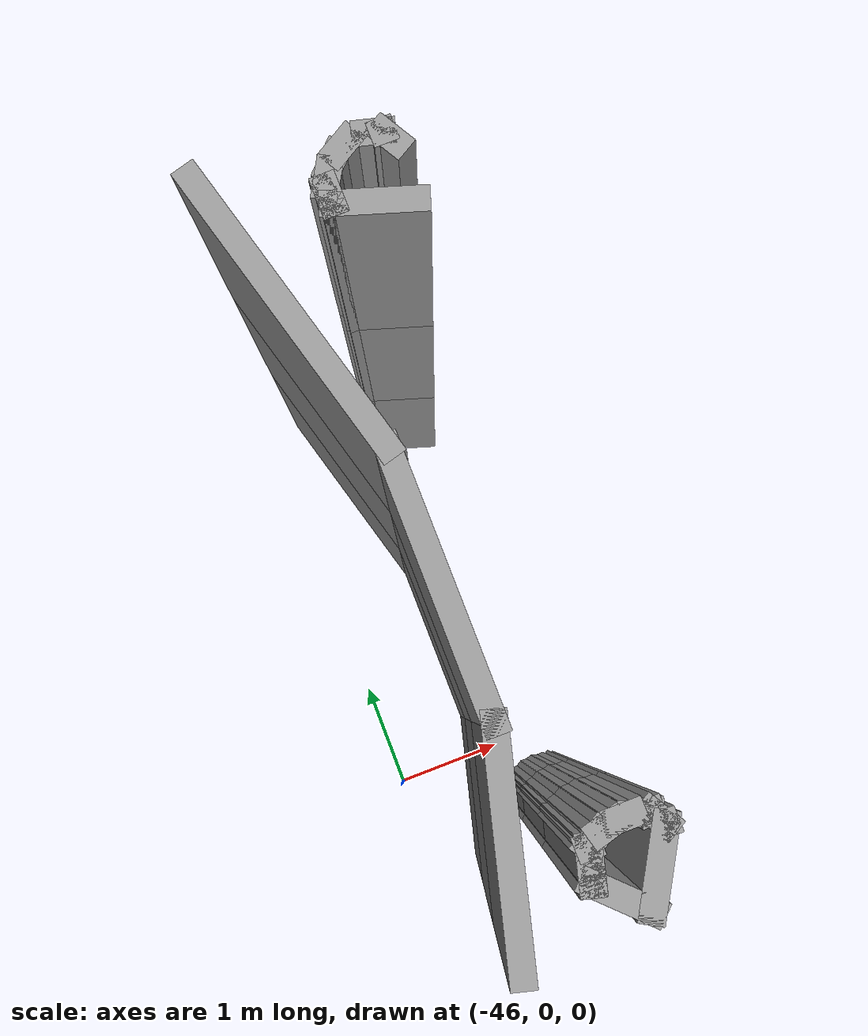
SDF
<sdf version="1.7">
 <model name="mapagazebo">
  <pose>-4.67869 9.01252 0 0 -0 0</pose>
  <link name="Wall_1000">
   <collision name="Wall_1000_Collision">
    <geometry><box><size>0.25 0.15 2.5</size></box></geometry>
    <pose>0 0 1.25 0 -0 0</pose>
   </collision>
   <visual name="Wall_1000_Visual">
    <pose>0 0 1.25 0 -0 0</pose>
    <geometry><box><size>0.25 0.15 2.5</size></box></geometry>
    <material>
     <script><uri>file://media/materials/scripts/gazebo.material</uri><name>Gazebo/Grey</name></script>
     <ambient>1 1 1 1</ambient>
    </material>
    <meta><layer>1</layer></meta>
   </visual>
   <pose>-40.177 -5.42763 2.5 0 -0 0.785398</pose>
  </link>
  <link name="Wall_1001">
   <collision name="Wall_1001_Collision">
    <geometry><box><size>0.25 0.15 2.5</size></box></geometry>
    <pose>0 0 1.25 0 -0 0</pose>
   </collision>
   <visual name="Wall_1001_Visual">
    <pose>0 0 1.25 0 -0 0</pose>
    <geometry><box><size>0.25 0.15 2.5</size></box></geometry>
    <material>
     <script><uri>file://media/materials/scripts/gazebo.material</uri><name>Gazebo/Grey</name></script>
     <ambient>1 1 1 1</ambient>
    </material>
    <meta><layer>1</layer></meta>
   </visual>
   <pose>-40.0984 -5.36727 2.5 0 -0 0.523599</pose>
  </link>
  <link name="Wall_1003">
   <collision name="Wall_1003_Collision">
    <geometry><box><size>0.25 0.15 2.5</size></box></geometry>
    <pose>0 0 1.25 0 -0 0</pose>
   </collision>
   <visual name="Wall_1003_Visual">
    <pose>0 0 1.25 0 -0 0</pose>
    <geometry><box><size>0.25 0.15 2.5</size></box></geometry>
    <material>
     <script><uri>file://media/materials/scripts/gazebo.material</uri><name>Gazebo/Grey</name></script>
     <ambient>1 1 1 1</ambient>
    </material>
    <meta><layer>1</layer></meta>
   </visual>
   <pose>-39.9068 -5.35521 2.5 0 -0 -0.261799</pose>
  </link>
  <link name="Wall_1004">
   <collision name="Wall_1004_Collision">
    <geometry><box><size>0.15 0.15 2.5</size></box></geometry>
    <pose>0 0 1.25 0 -0 0</pose>
   </collision>
   <visual name="Wall_1004_Visual">
    <pose>0 0 1.25 0 -0 0</pose>
    <geometry><box><size>0.15 0.15 2.5</size></box></geometry>
    <material>
     <script><uri>file://media/materials/scripts/gazebo.material</uri><name>Gazebo/Grey</name></script>
     <ambient>1 1 1 1</ambient>
    </material>
    <meta><layer>1</layer></meta>
   </visual>
   <pose>-39.8585 -5.36815 2.5 0 -0 0</pose>
  </link>
  <link name="Wall_1005">
   <collision name="Wall_1005_Collision">
    <geometry><box><size>0.25 0.15 2.5</size></box></geometry>
    <pose>0 0 1.25 0 -0 0</pose>
   </collision>
   <visual name="Wall_1005_Visual">
    <pose>0 0 1.25 0 -0 0</pose>
    <geometry><box><size>0.25 0.15 2.5</size></box></geometry>
    <material>
     <script><uri>file://media/materials/scripts/gazebo.material</uri><name>Gazebo/Grey</name></script>
     <ambient>1 1 1 1</ambient>
    </material>
    <meta><layer>1</layer></meta>
   </visual>
   <pose>-39.8335 -5.41146 2.5 0 -0 -1.0472</pose>
  </link>
  <link name="Wall_1009">
   <collision name="Wall_1009_Collision">
    <geometry><box><size>0.617004 0.15 2.5</size></box></geometry>
    <pose>0 0 1.25 0 -0 0</pose>
   </collision>
   <visual name="Wall_1009_Visual">
    <pose>0 0 1.25 0 -0 0</pose>
    <geometry><box><size>0.617004 0.15 2.5</size></box></geometry>
    <material>
     <script><uri>file://media/materials/scripts/gazebo.material</uri><name>Gazebo/Grey</name></script>
     <ambient>1 1 1 1</ambient>
    </material>
    <meta><layer>1</layer></meta>
   </visual>
   <pose>-40.0401 -5.72121 2.5 0 -0 2.82984</pose>
  </link>
  <link name="Wall_1010">
   <collision name="Wall_1010_Collision">
    <geometry><box><size>0.15 0.15 2.5</size></box></geometry>
    <pose>0 0 1.25 0 -0 0</pose>
   </collision>
   <visual name="Wall_1010_Visual">
    <pose>0 0 1.25 0 -0 0</pose>
    <geometry><box><size>0.15 0.15 2.5</size></box></geometry>
    <material>
     <script><uri>file://media/materials/scripts/gazebo.material</uri><name>Gazebo/Grey</name></script>
     <ambient>1 1 1 1</ambient>
    </material>
    <meta><layer>1</layer></meta>
   </visual>
   <pose>-40.2624 -5.64959 2.5 0 -0 0</pose>
  </link>
  <link name="Wall_1552">
   <collision name="Wall_1552_Collision">
    <geometry><box><size>2 0.15 2.5</size></box></geometry>
    <pose>0 0 1.25 0 -0 0</pose>
   </collision>
   <visual name="Wall_1552_Visual">
    <pose>0 0 1.25 0 -0 0</pose>
    <geometry><box><size>2 0.15 2.5</size></box></geometry>
    <material>
     <script><uri>file://media/materials/scripts/gazebo.material</uri><name>Gazebo/Grey</name></script>
     <ambient>1 1 1 1</ambient>
    </material>
    <meta><layer>2</layer></meta>
   </visual>
   <pose>-40.7035 -6.12483 5 0 -0 -1.309</pose>
  </link>
  <link name="Wall_1553">
   <collision name="Wall_1553_Collision">
    <geometry><box><size>1.75 0.15 2.5</size></box></geometry>
    <pose>0 0 1.25 0 -0 0</pose>
   </collision>
   <visual name="Wall_1553_Visual">
    <pose>0 0 1.25 0 -0 0</pose>
    <geometry><box><size>1.75 0.15 2.5</size></box></geometry>
    <material>
     <script><uri>file://media/materials/scripts/gazebo.material</uri><name>Gazebo/Grey</name></script>
     <ambient>1 1 1 1</ambient>
    </material>
    <meta><layer>2</layer></meta>
   </visual>
   <pose>-40.4641 -7.81831 5 0 -0 -1.5708</pose>
  </link>
  <link name="Wall_1554">
   <collision name="Wall_1554_Collision">
    <geometry><box><size>1.5 0.15 2.5</size></box></geometry>
    <pose>0 0 1.25 0 -0 0</pose>
   </collision>
   <visual name="Wall_1554_Visual">
    <pose>0 0 1.25 0 -0 0</pose>
    <geometry><box><size>1.5 0.15 2.5</size></box></geometry>
    <material>
     <script><uri>file://media/materials/scripts/gazebo.material</uri><name>Gazebo/Grey</name></script>
     <ambient>1 1 1 1</ambient>
    </material>
    <meta><layer>2</layer></meta>
   </visual>
   <pose>-40.6388 -9.27031 5 0 -0 -1.8326</pose>
  </link>
  <link name="Wall_1606">
   <collision name="Wall_1606_Collision">
    <geometry><box><size>0.25 0.15 2.5</size></box></geometry>
    <pose>0 0 1.25 0 -0 0</pose>
   </collision>
   <visual name="Wall_1606_Visual">
    <pose>0 0 1.25 0 -0 0</pose>
    <geometry><box><size>0.25 0.15 2.5</size></box></geometry>
    <material>
     <script><uri>file://media/materials/scripts/gazebo.material</uri><name>Gazebo/Grey</name></script>
     <ambient>1 1 1 1</ambient>
    </material>
    <meta><layer>2</layer></meta>
   </visual>
   <pose>-40.2766 -9.55558 5 0 -0 1.309</pose>
  </link>
  <link name="Wall_1607">
   <collision name="Wall_1607_Collision">
    <geometry><box><size>0.25 0.15 2.5</size></box></geometry>
    <pose>0 0 1.25 0 -0 0</pose>
   </collision>
   <visual name="Wall_1607_Visual">
    <pose>0 0 1.25 0 -0 0</pose>
    <geometry><box><size>0.25 0.15 2.5</size></box></geometry>
    <material>
     <script><uri>file://media/materials/scripts/gazebo.material</uri><name>Gazebo/Grey</name></script>
     <ambient>1 1 1 1</ambient>
    </material>
    <meta><layer>2</layer></meta>
   </visual>
   <pose>-40.2508 -9.45899 5 0 -0 1.309</pose>
  </link>
  <link name="Wall_1608">
   <collision name="Wall_1608_Collision">
    <geometry><box><size>0.15 0.15 2.5</size></box></geometry>
    <pose>0 0 1.25 0 -0 0</pose>
   </collision>
   <visual name="Wall_1608_Visual">
    <pose>0 0 1.25 0 -0 0</pose>
    <geometry><box><size>0.15 0.15 2.5</size></box></geometry>
    <material>
     <script><uri>file://media/materials/scripts/gazebo.material</uri><name>Gazebo/Grey</name></script>
     <ambient>1 1 1 1</ambient>
    </material>
    <meta><layer>2</layer></meta>
   </visual>
   <pose>-40.2378 -9.41069 5 0 -0 0</pose>
  </link>
  <link name="Wall_1609">
   <collision name="Wall_1609_Collision">
    <geometry><box><size>0.25 0.15 2.5</size></box></geometry>
    <pose>0 0 1.25 0 -0 0</pose>
   </collision>
   <visual name="Wall_1609_Visual">
    <pose>0 0 1.25 0 -0 0</pose>
    <geometry><box><size>0.25 0.15 2.5</size></box></geometry>
    <material>
     <script><uri>file://media/materials/scripts/gazebo.material</uri><name>Gazebo/Grey</name></script>
     <ambient>1 1 1 1</ambient>
    </material>
    <meta><layer>2</layer></meta>
   </visual>
   <pose>-40.1945 -9.38569 5 0 -0 0.523599</pose>
  </link>
  <link name="Wall_1610">
   <collision name="Wall_1610_Collision">
    <geometry><box><size>0.25 0.15 2.5</size></box></geometry>
    <pose>0 0 1.25 0 -0 0</pose>
   </collision>
   <visual name="Wall_1610_Visual">
    <pose>0 0 1.25 0 -0 0</pose>
    <geometry><box><size>0.25 0.15 2.5</size></box></geometry>
    <material>
     <script><uri>file://media/materials/scripts/gazebo.material</uri><name>Gazebo/Grey</name></script>
     <ambient>1 1 1 1</ambient>
    </material>
    <meta><layer>2</layer></meta>
   </visual>
   <pose>-40.1029 -9.34775 5 0 -0 0.261799</pose>
  </link>
  <link name="Wall_1611">
   <collision name="Wall_1611_Collision">
    <geometry><box><size>0.25 0.15 2.5</size></box></geometry>
    <pose>0 0 1.25 0 -0 0</pose>
   </collision>
   <visual name="Wall_1611_Visual">
    <pose>0 0 1.25 0 -0 0</pose>
    <geometry><box><size>0.25 0.15 2.5</size></box></geometry>
    <material>
     <script><uri>file://media/materials/scripts/gazebo.material</uri><name>Gazebo/Grey</name></script>
     <ambient>1 1 1 1</ambient>
    </material>
    <meta><layer>2</layer></meta>
   </visual>
   <pose>-40.0046 -9.33481 5 0 -0 0</pose>
  </link>
  <link name="Wall_1612">
   <collision name="Wall_1612_Collision">
    <geometry><box><size>0.25 0.15 2.5</size></box></geometry>
    <pose>0 0 1.25 0 -0 0</pose>
   </collision>
   <visual name="Wall_1612_Visual">
    <pose>0 0 1.25 0 -0 0</pose>
    <geometry><box><size>0.25 0.15 2.5</size></box></geometry>
    <material>
     <script><uri>file://media/materials/scripts/gazebo.material</uri><name>Gazebo/Grey</name></script>
     <ambient>1 1 1 1</ambient>
    </material>
    <meta><layer>2</layer></meta>
   </visual>
   <pose>-39.9063 -9.34775 5 0 -0 -0.261799</pose>
  </link>
  <link name="Wall_1613">
   <collision name="Wall_1613_Collision">
    <geometry><box><size>0.15 0.15 2.5</size></box></geometry>
    <pose>0 0 1.25 0 -0 0</pose>
   </collision>
   <visual name="Wall_1613_Visual">
    <pose>0 0 1.25 0 -0 0</pose>
    <geometry><box><size>0.15 0.15 2.5</size></box></geometry>
    <material>
     <script><uri>file://media/materials/scripts/gazebo.material</uri><name>Gazebo/Grey</name></script>
     <ambient>1 1 1 1</ambient>
    </material>
    <meta><layer>2</layer></meta>
   </visual>
   <pose>-39.858 -9.36069 5 0 -0 0</pose>
  </link>
  <link name="Wall_1614">
   <collision name="Wall_1614_Collision">
    <geometry><box><size>0.25 0.15 2.5</size></box></geometry>
    <pose>0 0 1.25 0 -0 0</pose>
   </collision>
   <visual name="Wall_1614_Visual">
    <pose>0 0 1.25 0 -0 0</pose>
    <geometry><box><size>0.25 0.15 2.5</size></box></geometry>
    <material>
     <script><uri>file://media/materials/scripts/gazebo.material</uri><name>Gazebo/Grey</name></script>
     <ambient>1 1 1 1</ambient>
    </material>
    <meta><layer>2</layer></meta>
   </visual>
   <pose>-39.833 -9.40399 5 0 -0 -1.0472</pose>
  </link>
  <link name="Wall_1615">
   <collision name="Wall_1615_Collision">
    <geometry><box><size>0.25 0.15 2.5</size></box></geometry>
    <pose>0 0 1.25 0 -0 0</pose>
   </collision>
   <visual name="Wall_1615_Visual">
    <pose>0 0 1.25 0 -0 0</pose>
    <geometry><box><size>0.25 0.15 2.5</size></box></geometry>
    <material>
     <script><uri>file://media/materials/scripts/gazebo.material</uri><name>Gazebo/Grey</name></script>
     <ambient>1 1 1 1</ambient>
    </material>
    <meta><layer>2</layer></meta>
   </visual>
   <pose>-40.2766 -9.55558 5 0 -0 -1.8326</pose>
  </link>
  <link name="Wall_1616">
   <collision name="Wall_1616_Collision">
    <geometry><box><size>0.5 0.15 2.5</size></box></geometry>
    <pose>0 0 1.25 0 -0 0</pose>
   </collision>
   <visual name="Wall_1616_Visual">
    <pose>0 0 1.25 0 -0 0</pose>
    <geometry><box><size>0.5 0.15 2.5</size></box></geometry>
    <material>
     <script><uri>file://media/materials/scripts/gazebo.material</uri><name>Gazebo/Grey</name></script>
     <ambient>1 1 1 1</ambient>
    </material>
    <meta><layer>2</layer></meta>
   </visual>
   <pose>-40.1658 -9.72762 5 0 -0 -0.785398</pose>
  </link>
  <link name="Wall_1618">
   <collision name="Wall_1618_Collision">
    <geometry><box><size>0.616967 0.15 2.5</size></box></geometry>
    <pose>0 0 1.25 0 -0 0</pose>
   </collision>
   <visual name="Wall_1618_Visual">
    <pose>0 0 1.25 0 -0 0</pose>
    <geometry><box><size>0.616967 0.15 2.5</size></box></geometry>
    <material>
     <script><uri>file://media/materials/scripts/gazebo.material</uri><name>Gazebo/Grey</name></script>
     <ambient>1 1 1 1</ambient>
    </material>
    <meta><layer>2</layer></meta>
   </visual>
   <pose>-39.9251 -9.64933 5 0 -0 1.04576</pose>
  </link>
  <link name="Wall_1619">
   <collision name="Wall_1619_Collision">
    <geometry><box><size>0.15 0.15 2.5</size></box></geometry>
    <pose>0 0 1.25 0 -0 0</pose>
   </collision>
   <visual name="Wall_1619_Visual">
    <pose>0 0 1.25 0 -0 0</pose>
    <geometry><box><size>0.15 0.15 2.5</size></box></geometry>
    <material>
     <script><uri>file://media/materials/scripts/gazebo.material</uri><name>Gazebo/Grey</name></script>
     <ambient>1 1 1 1</ambient>
    </material>
    <meta><layer>2</layer></meta>
   </visual>
   <pose>-39.808 -9.44729 5 0 -0 0</pose>
  </link>
  <link name="Wall_1620">
   <collision name="Wall_1620_Collision">
    <geometry><box><size>0.25 0.15 2.5</size></box></geometry>
    <pose>0 0 1.25 0 -0 0</pose>
   </collision>
   <visual name="Wall_1620_Visual">
    <pose>0 0 1.25 0 -0 0</pose>
    <geometry><box><size>0.25 0.15 2.5</size></box></geometry>
    <material>
     <script><uri>file://media/materials/scripts/gazebo.material</uri><name>Gazebo/Grey</name></script>
     <ambient>1 1 1 1</ambient>
    </material>
    <meta><layer>2</layer></meta>
   </visual>
   <pose>-40.2624 -5.59959 5 0 -0 1.5708</pose>
  </link>
  <link name="Wall_1621">
   <collision name="Wall_1621_Collision">
    <geometry><box><size>0.25 0.15 2.5</size></box></geometry>
    <pose>0 0 1.25 0 -0 0</pose>
   </collision>
   <visual name="Wall_1621_Visual">
    <pose>0 0 1.25 0 -0 0</pose>
    <geometry><box><size>0.25 0.15 2.5</size></box></geometry>
    <material>
     <script><uri>file://media/materials/scripts/gazebo.material</uri><name>Gazebo/Grey</name></script>
     <ambient>1 1 1 1</ambient>
    </material>
    <meta><layer>2</layer></meta>
   </visual>
   <pose>-40.2624 -5.59959 5 0 -0 -1.5708</pose>
  </link>
  <link name="Wall_1622">
   <collision name="Wall_1622_Collision">
    <geometry><box><size>0.25 0.15 2.5</size></box></geometry>
    <pose>0 0 1.25 0 -0 0</pose>
   </collision>
   <visual name="Wall_1622_Visual">
    <pose>0 0 1.25 0 -0 0</pose>
    <geometry><box><size>0.25 0.15 2.5</size></box></geometry>
    <material>
     <script><uri>file://media/materials/scripts/gazebo.material</uri><name>Gazebo/Grey</name></script>
     <ambient>1 1 1 1</ambient>
    </material>
    <meta><layer>2</layer></meta>
   </visual>
   <pose>-40.2624 -5.59959 5 0 -0 1.5708</pose>
  </link>
  <link name="Wall_1623">
   <collision name="Wall_1623_Collision">
    <geometry><box><size>0.25 0.15 2.5</size></box></geometry>
    <pose>0 0 1.25 0 -0 0</pose>
   </collision>
   <visual name="Wall_1623_Visual">
    <pose>0 0 1.25 0 -0 0</pose>
    <geometry><box><size>0.25 0.15 2.5</size></box></geometry>
    <material>
     <script><uri>file://media/materials/scripts/gazebo.material</uri><name>Gazebo/Grey</name></script>
     <ambient>1 1 1 1</ambient>
    </material>
    <meta><layer>2</layer></meta>
   </visual>
   <pose>-40.2374 -5.50629 5 0 -0 1.0472</pose>
  </link>
  <link name="Wall_1624">
   <collision name="Wall_1624_Collision">
    <geometry><box><size>0.25 0.15 2.5</size></box></geometry>
    <pose>0 0 1.25 0 -0 0</pose>
   </collision>
   <visual name="Wall_1624_Visual">
    <pose>0 0 1.25 0 -0 0</pose>
    <geometry><box><size>0.25 0.15 2.5</size></box></geometry>
    <material>
     <script><uri>file://media/materials/scripts/gazebo.material</uri><name>Gazebo/Grey</name></script>
     <ambient>1 1 1 1</ambient>
    </material>
    <meta><layer>2</layer></meta>
   </visual>
   <pose>-40.177 -5.42763 5 0 -0 0.785398</pose>
  </link>
  <link name="Wall_1625">
   <collision name="Wall_1625_Collision">
    <geometry><box><size>0.25 0.15 2.5</size></box></geometry>
    <pose>0 0 1.25 0 -0 0</pose>
   </collision>
   <visual name="Wall_1625_Visual">
    <pose>0 0 1.25 0 -0 0</pose>
    <geometry><box><size>0.25 0.15 2.5</size></box></geometry>
    <material>
     <script><uri>file://media/materials/scripts/gazebo.material</uri><name>Gazebo/Grey</name></script>
     <ambient>1 1 1 1</ambient>
    </material>
    <meta><layer>2</layer></meta>
   </visual>
   <pose>-40.0984 -5.36727 5 0 -0 0.523599</pose>
  </link>
  <link name="Wall_1627">
   <collision name="Wall_1627_Collision">
    <geometry><box><size>0.25 0.15 2.5</size></box></geometry>
    <pose>0 0 1.25 0 -0 0</pose>
   </collision>
   <visual name="Wall_1627_Visual">
    <pose>0 0 1.25 0 -0 0</pose>
    <geometry><box><size>0.25 0.15 2.5</size></box></geometry>
    <material>
     <script><uri>file://media/materials/scripts/gazebo.material</uri><name>Gazebo/Grey</name></script>
     <ambient>1 1 1 1</ambient>
    </material>
    <meta><layer>2</layer></meta>
   </visual>
   <pose>-39.9068 -5.35521 5 0 -0 -0.261799</pose>
  </link>
  <link name="Wall_1628">
   <collision name="Wall_1628_Collision">
    <geometry><box><size>0.15 0.15 2.5</size></box></geometry>
    <pose>0 0 1.25 0 -0 0</pose>
   </collision>
   <visual name="Wall_1628_Visual">
    <pose>0 0 1.25 0 -0 0</pose>
    <geometry><box><size>0.15 0.15 2.5</size></box></geometry>
    <material>
     <script><uri>file://media/materials/scripts/gazebo.material</uri><name>Gazebo/Grey</name></script>
     <ambient>1 1 1 1</ambient>
    </material>
    <meta><layer>2</layer></meta>
   </visual>
   <pose>-39.8585 -5.36815 5 0 -0 0</pose>
  </link>
  <link name="Wall_1629">
   <collision name="Wall_1629_Collision">
    <geometry><box><size>0.25 0.15 2.5</size></box></geometry>
    <pose>0 0 1.25 0 -0 0</pose>
   </collision>
   <visual name="Wall_1629_Visual">
    <pose>0 0 1.25 0 -0 0</pose>
    <geometry><box><size>0.25 0.15 2.5</size></box></geometry>
    <material>
     <script><uri>file://media/materials/scripts/gazebo.material</uri><name>Gazebo/Grey</name></script>
     <ambient>1 1 1 1</ambient>
    </material>
    <meta><layer>2</layer></meta>
   </visual>
   <pose>-39.8335 -5.41146 5 0 -0 -1.0472</pose>
  </link>
  <link name="Wall_1633">
   <collision name="Wall_1633_Collision">
    <geometry><box><size>0.617004 0.15 2.5</size></box></geometry>
    <pose>0 0 1.25 0 -0 0</pose>
   </collision>
   <visual name="Wall_1633_Visual">
    <pose>0 0 1.25 0 -0 0</pose>
    <geometry><box><size>0.617004 0.15 2.5</size></box></geometry>
    <material>
     <script><uri>file://media/materials/scripts/gazebo.material</uri><name>Gazebo/Grey</name></script>
     <ambient>1 1 1 1</ambient>
    </material>
    <meta><layer>2</layer></meta>
   </visual>
   <pose>-40.0401 -5.72121 5 0 -0 2.82984</pose>
  </link>
  <link name="Wall_1634">
   <collision name="Wall_1634_Collision">
    <geometry><box><size>0.15 0.15 2.5</size></box></geometry>
    <pose>0 0 1.25 0 -0 0</pose>
   </collision>
   <visual name="Wall_1634_Visual">
    <pose>0 0 1.25 0 -0 0</pose>
    <geometry><box><size>0.15 0.15 2.5</size></box></geometry>
    <material>
     <script><uri>file://media/materials/scripts/gazebo.material</uri><name>Gazebo/Grey</name></script>
     <ambient>1 1 1 1</ambient>
    </material>
    <meta><layer>2</layer></meta>
   </visual>
   <pose>-40.2624 -5.64959 5 0 -0 0</pose>
  </link>
  <link name="Wall_199">
   <collision name="Wall_199_Collision">
    <geometry><box><size>2 0.15 2.5</size></box></geometry>
    <pose>0 0 1.25 0 -0 0</pose>
   </collision>
   <visual name="Wall_199_Visual">
    <pose>0 0 1.25 0 -0 0</pose>
    <geometry><box><size>2 0.15 2.5</size></box></geometry>
    <material>
     <script><uri>file://media/materials/scripts/gazebo.material</uri><name>Gazebo/Grey</name></script>
     <ambient>1 1 1 1</ambient>
    </material>
    <meta><layer>0</layer></meta>
   </visual>
   <pose>-40.7035 -6.12483 0 0 -0 -1.309</pose>
  </link>
  <link name="Wall_200">
   <collision name="Wall_200_Collision">
    <geometry><box><size>1.75 0.15 2.5</size></box></geometry>
    <pose>0 0 1.25 0 -0 0</pose>
   </collision>
   <visual name="Wall_200_Visual">
    <pose>0 0 1.25 0 -0 0</pose>
    <geometry><box><size>1.75 0.15 2.5</size></box></geometry>
    <material>
     <script><uri>file://media/materials/scripts/gazebo.material</uri><name>Gazebo/Grey</name></script>
     <ambient>1 1 1 1</ambient>
    </material>
    <meta><layer>0</layer></meta>
   </visual>
   <pose>-40.4641 -7.81831 0 0 -0 -1.5708</pose>
  </link>
  <link name="Wall_201">
   <collision name="Wall_201_Collision">
    <geometry><box><size>1.5 0.15 2.5</size></box></geometry>
    <pose>0 0 1.25 0 -0 0</pose>
   </collision>
   <visual name="Wall_201_Visual">
    <pose>0 0 1.25 0 -0 0</pose>
    <geometry><box><size>1.5 0.15 2.5</size></box></geometry>
    <material>
     <script><uri>file://media/materials/scripts/gazebo.material</uri><name>Gazebo/Grey</name></script>
     <ambient>1 1 1 1</ambient>
    </material>
    <meta><layer>0</layer></meta>
   </visual>
   <pose>-40.6388 -9.27031 0 0 -0 -1.8326</pose>
  </link>
  <link name="Wall_266">
   <collision name="Wall_266_Collision">
    <geometry><box><size>0.25 0.15 2.5</size></box></geometry>
    <pose>0 0 1.25 0 -0 0</pose>
   </collision>
   <visual name="Wall_266_Visual">
    <pose>0 0 1.25 0 -0 0</pose>
    <geometry><box><size>0.25 0.15 2.5</size></box></geometry>
    <material>
     <script><uri>file://media/materials/scripts/gazebo.material</uri><name>Gazebo/Grey</name></script>
     <ambient>1 1 1 1</ambient>
    </material>
    <meta><layer>0</layer></meta>
   </visual>
   <pose>-40.2766 -9.55558 0 0 -0 1.309</pose>
  </link>
  <link name="Wall_267">
   <collision name="Wall_267_Collision">
    <geometry><box><size>0.25 0.15 2.5</size></box></geometry>
    <pose>0 0 1.25 0 -0 0</pose>
   </collision>
   <visual name="Wall_267_Visual">
    <pose>0 0 1.25 0 -0 0</pose>
    <geometry><box><size>0.25 0.15 2.5</size></box></geometry>
    <material>
     <script><uri>file://media/materials/scripts/gazebo.material</uri><name>Gazebo/Grey</name></script>
     <ambient>1 1 1 1</ambient>
    </material>
    <meta><layer>0</layer></meta>
   </visual>
   <pose>-40.2508 -9.45899 0 0 -0 1.309</pose>
  </link>
  <link name="Wall_268">
   <collision name="Wall_268_Collision">
    <geometry><box><size>0.15 0.15 2.5</size></box></geometry>
    <pose>0 0 1.25 0 -0 0</pose>
   </collision>
   <visual name="Wall_268_Visual">
    <pose>0 0 1.25 0 -0 0</pose>
    <geometry><box><size>0.15 0.15 2.5</size></box></geometry>
    <material>
     <script><uri>file://media/materials/scripts/gazebo.material</uri><name>Gazebo/Grey</name></script>
     <ambient>1 1 1 1</ambient>
    </material>
    <meta><layer>0</layer></meta>
   </visual>
   <pose>-40.2378 -9.41069 0 0 -0 0</pose>
  </link>
  <link name="Wall_269">
   <collision name="Wall_269_Collision">
    <geometry><box><size>0.25 0.15 2.5</size></box></geometry>
    <pose>0 0 1.25 0 -0 0</pose>
   </collision>
   <visual name="Wall_269_Visual">
    <pose>0 0 1.25 0 -0 0</pose>
    <geometry><box><size>0.25 0.15 2.5</size></box></geometry>
    <material>
     <script><uri>file://media/materials/scripts/gazebo.material</uri><name>Gazebo/Grey</name></script>
     <ambient>1 1 1 1</ambient>
    </material>
    <meta><layer>0</layer></meta>
   </visual>
   <pose>-40.1945 -9.38569 0 0 -0 0.523599</pose>
  </link>
  <link name="Wall_270">
   <collision name="Wall_270_Collision">
    <geometry><box><size>0.25 0.15 2.5</size></box></geometry>
    <pose>0 0 1.25 0 -0 0</pose>
   </collision>
   <visual name="Wall_270_Visual">
    <pose>0 0 1.25 0 -0 0</pose>
    <geometry><box><size>0.25 0.15 2.5</size></box></geometry>
    <material>
     <script><uri>file://media/materials/scripts/gazebo.material</uri><name>Gazebo/Grey</name></script>
     <ambient>1 1 1 1</ambient>
    </material>
    <meta><layer>0</layer></meta>
   </visual>
   <pose>-40.1029 -9.34775 0 0 -0 0.261799</pose>
  </link>
  <link name="Wall_271">
   <collision name="Wall_271_Collision">
    <geometry><box><size>0.25 0.15 2.5</size></box></geometry>
    <pose>0 0 1.25 0 -0 0</pose>
   </collision>
   <visual name="Wall_271_Visual">
    <pose>0 0 1.25 0 -0 0</pose>
    <geometry><box><size>0.25 0.15 2.5</size></box></geometry>
    <material>
     <script><uri>file://media/materials/scripts/gazebo.material</uri><name>Gazebo/Grey</name></script>
     <ambient>1 1 1 1</ambient>
    </material>
    <meta><layer>0</layer></meta>
   </visual>
   <pose>-40.0046 -9.33481 0 0 -0 0</pose>
  </link>
  <link name="Wall_272">
   <collision name="Wall_272_Collision">
    <geometry><box><size>0.25 0.15 2.5</size></box></geometry>
    <pose>0 0 1.25 0 -0 0</pose>
   </collision>
   <visual name="Wall_272_Visual">
    <pose>0 0 1.25 0 -0 0</pose>
    <geometry><box><size>0.25 0.15 2.5</size></box></geometry>
    <material>
     <script><uri>file://media/materials/scripts/gazebo.material</uri><name>Gazebo/Grey</name></script>
     <ambient>1 1 1 1</ambient>
    </material>
    <meta><layer>0</layer></meta>
   </visual>
   <pose>-39.9063 -9.34775 0 0 -0 -0.261799</pose>
  </link>
  <link name="Wall_273">
   <collision name="Wall_273_Collision">
    <geometry><box><size>0.15 0.15 2.5</size></box></geometry>
    <pose>0 0 1.25 0 -0 0</pose>
   </collision>
   <visual name="Wall_273_Visual">
    <pose>0 0 1.25 0 -0 0</pose>
    <geometry><box><size>0.15 0.15 2.5</size></box></geometry>
    <material>
     <script><uri>file://media/materials/scripts/gazebo.material</uri><name>Gazebo/Grey</name></script>
     <ambient>1 1 1 1</ambient>
    </material>
    <meta><layer>0</layer></meta>
   </visual>
   <pose>-39.858 -9.36069 0 0 -0 0</pose>
  </link>
  <link name="Wall_274">
   <collision name="Wall_274_Collision">
    <geometry><box><size>0.25 0.15 2.5</size></box></geometry>
    <pose>0 0 1.25 0 -0 0</pose>
   </collision>
   <visual name="Wall_274_Visual">
    <pose>0 0 1.25 0 -0 0</pose>
    <geometry><box><size>0.25 0.15 2.5</size></box></geometry>
    <material>
     <script><uri>file://media/materials/scripts/gazebo.material</uri><name>Gazebo/Grey</name></script>
     <ambient>1 1 1 1</ambient>
    </material>
    <meta><layer>0</layer></meta>
   </visual>
   <pose>-39.833 -9.40399 0 0 -0 -1.0472</pose>
  </link>
  <link name="Wall_276">
   <collision name="Wall_276_Collision">
    <geometry><box><size>0.25 0.15 2.5</size></box></geometry>
    <pose>0 0 1.25 0 -0 0</pose>
   </collision>
   <visual name="Wall_276_Visual">
    <pose>0 0 1.25 0 -0 0</pose>
    <geometry><box><size>0.25 0.15 2.5</size></box></geometry>
    <material>
     <script><uri>file://media/materials/scripts/gazebo.material</uri><name>Gazebo/Grey</name></script>
     <ambient>1 1 1 1</ambient>
    </material>
    <meta><layer>0</layer></meta>
   </visual>
   <pose>-40.2766 -9.55558 0 0 -0 -1.8326</pose>
  </link>
  <link name="Wall_277">
   <collision name="Wall_277_Collision">
    <geometry><box><size>0.5 0.15 2.5</size></box></geometry>
    <pose>0 0 1.25 0 -0 0</pose>
   </collision>
   <visual name="Wall_277_Visual">
    <pose>0 0 1.25 0 -0 0</pose>
    <geometry><box><size>0.5 0.15 2.5</size></box></geometry>
    <material>
     <script><uri>file://media/materials/scripts/gazebo.material</uri><name>Gazebo/Grey</name></script>
     <ambient>1 1 1 1</ambient>
    </material>
    <meta><layer>0</layer></meta>
   </visual>
   <pose>-40.1658 -9.72762 0 0 -0 -0.785398</pose>
  </link>
  <link name="Wall_278">
   <collision name="Wall_278_Collision">
    <geometry><box><size>0.15 0.15 2.5</size></box></geometry>
    <pose>0 0 1.25 0 -0 0</pose>
   </collision>
   <visual name="Wall_278_Visual">
    <pose>0 0 1.25 0 -0 0</pose>
    <geometry><box><size>0.15 0.15 2.5</size></box></geometry>
    <material>
     <script><uri>file://media/materials/scripts/gazebo.material</uri><name>Gazebo/Grey</name></script>
     <ambient>1 1 1 1</ambient>
    </material>
    <meta><layer>0</layer></meta>
   </visual>
   <pose>-40.0421 -9.85136 0 0 -0 0</pose>
  </link>
  <link name="Wall_279">
   <collision name="Wall_279_Collision">
    <geometry><box><size>0.616967 0.15 2.5</size></box></geometry>
    <pose>0 0 1.25 0 -0 0</pose>
   </collision>
   <visual name="Wall_279_Visual">
    <pose>0 0 1.25 0 -0 0</pose>
    <geometry><box><size>0.616967 0.15 2.5</size></box></geometry>
    <material>
     <script><uri>file://media/materials/scripts/gazebo.material</uri><name>Gazebo/Grey</name></script>
     <ambient>1 1 1 1</ambient>
    </material>
    <meta><layer>0</layer></meta>
   </visual>
   <pose>-39.9251 -9.64933 0 0 -0 1.04576</pose>
  </link>
  <link name="Wall_280">
   <collision name="Wall_280_Collision">
    <geometry><box><size>0.15 0.15 2.5</size></box></geometry>
    <pose>0 0 1.25 0 -0 0</pose>
   </collision>
   <visual name="Wall_280_Visual">
    <pose>0 0 1.25 0 -0 0</pose>
    <geometry><box><size>0.15 0.15 2.5</size></box></geometry>
    <material>
     <script><uri>file://media/materials/scripts/gazebo.material</uri><name>Gazebo/Grey</name></script>
     <ambient>1 1 1 1</ambient>
    </material>
    <meta><layer>0</layer></meta>
   </visual>
   <pose>-39.808 -9.44729 0 0 -0 0</pose>
  </link>
  <link name="Wall_282">
   <collision name="Wall_282_Collision">
    <geometry><box><size>0.25 0.15 2.5</size></box></geometry>
    <pose>0 0 1.25 0 -0 0</pose>
   </collision>
   <visual name="Wall_282_Visual">
    <pose>0 0 1.25 0 -0 0</pose>
    <geometry><box><size>0.25 0.15 2.5</size></box></geometry>
    <material>
     <script><uri>file://media/materials/scripts/gazebo.material</uri><name>Gazebo/Grey</name></script>
     <ambient>1 1 1 1</ambient>
    </material>
    <meta><layer>0</layer></meta>
   </visual>
   <pose>-40.2624 -5.59959 0 0 -0 1.5708</pose>
  </link>
  <link name="Wall_283">
   <collision name="Wall_283_Collision">
    <geometry><box><size>0.25 0.15 2.5</size></box></geometry>
    <pose>0 0 1.25 0 -0 0</pose>
   </collision>
   <visual name="Wall_283_Visual">
    <pose>0 0 1.25 0 -0 0</pose>
    <geometry><box><size>0.25 0.15 2.5</size></box></geometry>
    <material>
     <script><uri>file://media/materials/scripts/gazebo.material</uri><name>Gazebo/Grey</name></script>
     <ambient>1 1 1 1</ambient>
    </material>
    <meta><layer>0</layer></meta>
   </visual>
   <pose>-40.2624 -5.59959 0 0 -0 -1.5708</pose>
  </link>
  <link name="Wall_284">
   <collision name="Wall_284_Collision">
    <geometry><box><size>0.25 0.15 2.5</size></box></geometry>
    <pose>0 0 1.25 0 -0 0</pose>
   </collision>
   <visual name="Wall_284_Visual">
    <pose>0 0 1.25 0 -0 0</pose>
    <geometry><box><size>0.25 0.15 2.5</size></box></geometry>
    <material>
     <script><uri>file://media/materials/scripts/gazebo.material</uri><name>Gazebo/Grey</name></script>
     <ambient>1 1 1 1</ambient>
    </material>
    <meta><layer>0</layer></meta>
   </visual>
   <pose>-40.2624 -5.59959 0 0 -0 1.5708</pose>
  </link>
  <link name="Wall_285">
   <collision name="Wall_285_Collision">
    <geometry><box><size>0.25 0.15 2.5</size></box></geometry>
    <pose>0 0 1.25 0 -0 0</pose>
   </collision>
   <visual name="Wall_285_Visual">
    <pose>0 0 1.25 0 -0 0</pose>
    <geometry><box><size>0.25 0.15 2.5</size></box></geometry>
    <material>
     <script><uri>file://media/materials/scripts/gazebo.material</uri><name>Gazebo/Grey</name></script>
     <ambient>1 1 1 1</ambient>
    </material>
    <meta><layer>0</layer></meta>
   </visual>
   <pose>-40.2374 -5.50629 0 0 -0 1.0472</pose>
  </link>
  <link name="Wall_286">
   <collision name="Wall_286_Collision">
    <geometry><box><size>0.25 0.15 2.5</size></box></geometry>
    <pose>0 0 1.25 0 -0 0</pose>
   </collision>
   <visual name="Wall_286_Visual">
    <pose>0 0 1.25 0 -0 0</pose>
    <geometry><box><size>0.25 0.15 2.5</size></box></geometry>
    <material>
     <script><uri>file://media/materials/scripts/gazebo.material</uri><name>Gazebo/Grey</name></script>
     <ambient>1 1 1 1</ambient>
    </material>
    <meta><layer>0</layer></meta>
   </visual>
   <pose>-40.177 -5.42763 0 0 -0 0.785398</pose>
  </link>
  <link name="Wall_287">
   <collision name="Wall_287_Collision">
    <geometry><box><size>0.25 0.15 2.5</size></box></geometry>
    <pose>0 0 1.25 0 -0 0</pose>
   </collision>
   <visual name="Wall_287_Visual">
    <pose>0 0 1.25 0 -0 0</pose>
    <geometry><box><size>0.25 0.15 2.5</size></box></geometry>
    <material>
     <script><uri>file://media/materials/scripts/gazebo.material</uri><name>Gazebo/Grey</name></script>
     <ambient>1 1 1 1</ambient>
    </material>
    <meta><layer>0</layer></meta>
   </visual>
   <pose>-40.0984 -5.36727 0 0 -0 0.523599</pose>
  </link>
  <link name="Wall_289">
   <collision name="Wall_289_Collision">
    <geometry><box><size>0.25 0.15 2.5</size></box></geometry>
    <pose>0 0 1.25 0 -0 0</pose>
   </collision>
   <visual name="Wall_289_Visual">
    <pose>0 0 1.25 0 -0 0</pose>
    <geometry><box><size>0.25 0.15 2.5</size></box></geometry>
    <material>
     <script><uri>file://media/materials/scripts/gazebo.material</uri><name>Gazebo/Grey</name></script>
     <ambient>1 1 1 1</ambient>
    </material>
    <meta><layer>0</layer></meta>
   </visual>
   <pose>-39.9068 -5.35521 0 0 -0 -0.261799</pose>
  </link>
  <link name="Wall_290">
   <collision name="Wall_290_Collision">
    <geometry><box><size>0.15 0.15 2.5</size></box></geometry>
    <pose>0 0 1.25 0 -0 0</pose>
   </collision>
   <visual name="Wall_290_Visual">
    <pose>0 0 1.25 0 -0 0</pose>
    <geometry><box><size>0.15 0.15 2.5</size></box></geometry>
    <material>
     <script><uri>file://media/materials/scripts/gazebo.material</uri><name>Gazebo/Grey</name></script>
     <ambient>1 1 1 1</ambient>
    </material>
    <meta><layer>0</layer></meta>
   </visual>
   <pose>-39.8585 -5.36815 0 0 -0 0</pose>
  </link>
  <link name="Wall_291">
   <collision name="Wall_291_Collision">
    <geometry><box><size>0.25 0.15 2.5</size></box></geometry>
    <pose>0 0 1.25 0 -0 0</pose>
   </collision>
   <visual name="Wall_291_Visual">
    <pose>0 0 1.25 0 -0 0</pose>
    <geometry><box><size>0.25 0.15 2.5</size></box></geometry>
    <material>
     <script><uri>file://media/materials/scripts/gazebo.material</uri><name>Gazebo/Grey</name></script>
     <ambient>1 1 1 1</ambient>
    </material>
    <meta><layer>0</layer></meta>
   </visual>
   <pose>-39.8335 -5.41146 0 0 -0 -1.0472</pose>
  </link>
  <link name="Wall_295">
   <collision name="Wall_295_Collision">
    <geometry><box><size>0.617004 0.15 2.5</size></box></geometry>
    <pose>0 0 1.25 0 -0 0</pose>
   </collision>
   <visual name="Wall_295_Visual">
    <pose>0 0 1.25 0 -0 0</pose>
    <geometry><box><size>0.617004 0.15 2.5</size></box></geometry>
    <material>
     <script><uri>file://media/materials/scripts/gazebo.material</uri><name>Gazebo/Grey</name></script>
     <ambient>1 1 1 1</ambient>
    </material>
    <meta><layer>0</layer></meta>
   </visual>
   <pose>-40.0401 -5.72121 0 0 -0 2.82984</pose>
  </link>
  <link name="Wall_296">
   <collision name="Wall_296_Collision">
    <geometry><box><size>0.15 0.15 2.5</size></box></geometry>
    <pose>0 0 1.25 0 -0 0</pose>
   </collision>
   <visual name="Wall_296_Visual">
    <pose>0 0 1.25 0 -0 0</pose>
    <geometry><box><size>0.15 0.15 2.5</size></box></geometry>
    <material>
     <script><uri>file://media/materials/scripts/gazebo.material</uri><name>Gazebo/Grey</name></script>
     <ambient>1 1 1 1</ambient>
    </material>
    <meta><layer>0</layer></meta>
   </visual>
   <pose>-40.2624 -5.64959 0 0 -0 0</pose>
  </link>
  <link name="Wall_928">
   <collision name="Wall_928_Collision">
    <geometry><box><size>2 0.15 2.5</size></box></geometry>
    <pose>0 0 1.25 0 -0 0</pose>
   </collision>
   <visual name="Wall_928_Visual">
    <pose>0 0 1.25 0 -0 0</pose>
    <geometry><box><size>2 0.15 2.5</size></box></geometry>
    <material>
     <script><uri>file://media/materials/scripts/gazebo.material</uri><name>Gazebo/Grey</name></script>
     <ambient>1 1 1 1</ambient>
    </material>
    <meta><layer>1</layer></meta>
   </visual>
   <pose>-40.7035 -6.12483 2.5 0 -0 -1.309</pose>
  </link>
  <link name="Wall_929">
   <collision name="Wall_929_Collision">
    <geometry><box><size>1.75 0.15 2.5</size></box></geometry>
    <pose>0 0 1.25 0 -0 0</pose>
   </collision>
   <visual name="Wall_929_Visual">
    <pose>0 0 1.25 0 -0 0</pose>
    <geometry><box><size>1.75 0.15 2.5</size></box></geometry>
    <material>
     <script><uri>file://media/materials/scripts/gazebo.material</uri><name>Gazebo/Grey</name></script>
     <ambient>1 1 1 1</ambient>
    </material>
    <meta><layer>1</layer></meta>
   </visual>
   <pose>-40.4641 -7.81831 2.5 0 -0 -1.5708</pose>
  </link>
  <link name="Wall_930">
   <collision name="Wall_930_Collision">
    <geometry><box><size>1.5 0.15 2.5</size></box></geometry>
    <pose>0 0 1.25 0 -0 0</pose>
   </collision>
   <visual name="Wall_930_Visual">
    <pose>0 0 1.25 0 -0 0</pose>
    <geometry><box><size>1.5 0.15 2.5</size></box></geometry>
    <material>
     <script><uri>file://media/materials/scripts/gazebo.material</uri><name>Gazebo/Grey</name></script>
     <ambient>1 1 1 1</ambient>
    </material>
    <meta><layer>1</layer></meta>
   </visual>
   <pose>-40.6388 -9.27031 2.5 0 -0 -1.8326</pose>
  </link>
  <link name="Wall_982">
   <collision name="Wall_982_Collision">
    <geometry><box><size>0.25 0.15 2.5</size></box></geometry>
    <pose>0 0 1.25 0 -0 0</pose>
   </collision>
   <visual name="Wall_982_Visual">
    <pose>0 0 1.25 0 -0 0</pose>
    <geometry><box><size>0.25 0.15 2.5</size></box></geometry>
    <material>
     <script><uri>file://media/materials/scripts/gazebo.material</uri><name>Gazebo/Grey</name></script>
     <ambient>1 1 1 1</ambient>
    </material>
    <meta><layer>1</layer></meta>
   </visual>
   <pose>-40.2766 -9.55558 2.5 0 -0 1.309</pose>
  </link>
  <link name="Wall_983">
   <collision name="Wall_983_Collision">
    <geometry><box><size>0.25 0.15 2.5</size></box></geometry>
    <pose>0 0 1.25 0 -0 0</pose>
   </collision>
   <visual name="Wall_983_Visual">
    <pose>0 0 1.25 0 -0 0</pose>
    <geometry><box><size>0.25 0.15 2.5</size></box></geometry>
    <material>
     <script><uri>file://media/materials/scripts/gazebo.material</uri><name>Gazebo/Grey</name></script>
     <ambient>1 1 1 1</ambient>
    </material>
    <meta><layer>1</layer></meta>
   </visual>
   <pose>-40.2508 -9.45899 2.5 0 -0 1.309</pose>
  </link>
  <link name="Wall_984">
   <collision name="Wall_984_Collision">
    <geometry><box><size>0.15 0.15 2.5</size></box></geometry>
    <pose>0 0 1.25 0 -0 0</pose>
   </collision>
   <visual name="Wall_984_Visual">
    <pose>0 0 1.25 0 -0 0</pose>
    <geometry><box><size>0.15 0.15 2.5</size></box></geometry>
    <material>
     <script><uri>file://media/materials/scripts/gazebo.material</uri><name>Gazebo/Grey</name></script>
     <ambient>1 1 1 1</ambient>
    </material>
    <meta><layer>1</layer></meta>
   </visual>
   <pose>-40.2378 -9.41069 2.5 0 -0 0</pose>
  </link>
  <link name="Wall_985">
   <collision name="Wall_985_Collision">
    <geometry><box><size>0.25 0.15 2.5</size></box></geometry>
    <pose>0 0 1.25 0 -0 0</pose>
   </collision>
   <visual name="Wall_985_Visual">
    <pose>0 0 1.25 0 -0 0</pose>
    <geometry><box><size>0.25 0.15 2.5</size></box></geometry>
    <material>
     <script><uri>file://media/materials/scripts/gazebo.material</uri><name>Gazebo/Grey</name></script>
     <ambient>1 1 1 1</ambient>
    </material>
    <meta><layer>1</layer></meta>
   </visual>
   <pose>-40.1945 -9.38569 2.5 0 -0 0.523599</pose>
  </link>
  <link name="Wall_986">
   <collision name="Wall_986_Collision">
    <geometry><box><size>0.25 0.15 2.5</size></box></geometry>
    <pose>0 0 1.25 0 -0 0</pose>
   </collision>
   <visual name="Wall_986_Visual">
    <pose>0 0 1.25 0 -0 0</pose>
    <geometry><box><size>0.25 0.15 2.5</size></box></geometry>
    <material>
     <script><uri>file://media/materials/scripts/gazebo.material</uri><name>Gazebo/Grey</name></script>
     <ambient>1 1 1 1</ambient>
    </material>
    <meta><layer>1</layer></meta>
   </visual>
   <pose>-40.1029 -9.34775 2.5 0 -0 0.261799</pose>
  </link>
  <link name="Wall_987">
   <collision name="Wall_987_Collision">
    <geometry><box><size>0.25 0.15 2.5</size></box></geometry>
    <pose>0 0 1.25 0 -0 0</pose>
   </collision>
   <visual name="Wall_987_Visual">
    <pose>0 0 1.25 0 -0 0</pose>
    <geometry><box><size>0.25 0.15 2.5</size></box></geometry>
    <material>
     <script><uri>file://media/materials/scripts/gazebo.material</uri><name>Gazebo/Grey</name></script>
     <ambient>1 1 1 1</ambient>
    </material>
    <meta><layer>1</layer></meta>
   </visual>
   <pose>-40.0046 -9.33481 2.5 0 -0 0</pose>
  </link>
  <link name="Wall_988">
   <collision name="Wall_988_Collision">
    <geometry><box><size>0.25 0.15 2.5</size></box></geometry>
    <pose>0 0 1.25 0 -0 0</pose>
   </collision>
   <visual name="Wall_988_Visual">
    <pose>0 0 1.25 0 -0 0</pose>
    <geometry><box><size>0.25 0.15 2.5</size></box></geometry>
    <material>
     <script><uri>file://media/materials/scripts/gazebo.material</uri><name>Gazebo/Grey</name></script>
     <ambient>1 1 1 1</ambient>
    </material>
    <meta><layer>1</layer></meta>
   </visual>
   <pose>-39.9063 -9.34775 2.5 0 -0 -0.261799</pose>
  </link>
  <link name="Wall_989">
   <collision name="Wall_989_Collision">
    <geometry><box><size>0.15 0.15 2.5</size></box></geometry>
    <pose>0 0 1.25 0 -0 0</pose>
   </collision>
   <visual name="Wall_989_Visual">
    <pose>0 0 1.25 0 -0 0</pose>
    <geometry><box><size>0.15 0.15 2.5</size></box></geometry>
    <material>
     <script><uri>file://media/materials/scripts/gazebo.material</uri><name>Gazebo/Grey</name></script>
     <ambient>1 1 1 1</ambient>
    </material>
    <meta><layer>1</layer></meta>
   </visual>
   <pose>-39.858 -9.36069 2.5 0 -0 0</pose>
  </link>
  <link name="Wall_990">
   <collision name="Wall_990_Collision">
    <geometry><box><size>0.25 0.15 2.5</size></box></geometry>
    <pose>0 0 1.25 0 -0 0</pose>
   </collision>
   <visual name="Wall_990_Visual">
    <pose>0 0 1.25 0 -0 0</pose>
    <geometry><box><size>0.25 0.15 2.5</size></box></geometry>
    <material>
     <script><uri>file://media/materials/scripts/gazebo.material</uri><name>Gazebo/Grey</name></script>
     <ambient>1 1 1 1</ambient>
    </material>
    <meta><layer>1</layer></meta>
   </visual>
   <pose>-39.833 -9.40399 2.5 0 -0 -1.0472</pose>
  </link>
  <link name="Wall_991">
   <collision name="Wall_991_Collision">
    <geometry><box><size>0.25 0.15 2.5</size></box></geometry>
    <pose>0 0 1.25 0 -0 0</pose>
   </collision>
   <visual name="Wall_991_Visual">
    <pose>0 0 1.25 0 -0 0</pose>
    <geometry><box><size>0.25 0.15 2.5</size></box></geometry>
    <material>
     <script><uri>file://media/materials/scripts/gazebo.material</uri><name>Gazebo/Grey</name></script>
     <ambient>1 1 1 1</ambient>
    </material>
    <meta><layer>1</layer></meta>
   </visual>
   <pose>-40.2766 -9.55558 2.5 0 -0 -1.8326</pose>
  </link>
  <link name="Wall_992">
   <collision name="Wall_992_Collision">
    <geometry><box><size>0.5 0.15 2.5</size></box></geometry>
    <pose>0 0 1.25 0 -0 0</pose>
   </collision>
   <visual name="Wall_992_Visual">
    <pose>0 0 1.25 0 -0 0</pose>
    <geometry><box><size>0.5 0.15 2.5</size></box></geometry>
    <material>
     <script><uri>file://media/materials/scripts/gazebo.material</uri><name>Gazebo/Grey</name></script>
     <ambient>1 1 1 1</ambient>
    </material>
    <meta><layer>1</layer></meta>
   </visual>
   <pose>-40.1658 -9.72762 2.5 0 -0 -0.785398</pose>
  </link>
  <link name="Wall_993">
   <collision name="Wall_993_Collision">
    <geometry><box><size>0.15 0.15 2.5</size></box></geometry>
    <pose>0 0 1.25 0 -0 0</pose>
   </collision>
   <visual name="Wall_993_Visual">
    <pose>0 0 1.25 0 -0 0</pose>
    <geometry><box><size>0.15 0.15 2.5</size></box></geometry>
    <material>
     <script><uri>file://media/materials/scripts/gazebo.material</uri><name>Gazebo/Grey</name></script>
     <ambient>1 1 1 1</ambient>
    </material>
    <meta><layer>1</layer></meta>
   </visual>
   <pose>-40.0421 -9.85136 2.5 0 -0 0</pose>
  </link>
  <link name="Wall_994">
   <collision name="Wall_994_Collision">
    <geometry><box><size>0.616967 0.15 2.5</size></box></geometry>
    <pose>0 0 1.25 0 -0 0</pose>
   </collision>
   <visual name="Wall_994_Visual">
    <pose>0 0 1.25 0 -0 0</pose>
    <geometry><box><size>0.616967 0.15 2.5</size></box></geometry>
    <material>
     <script><uri>file://media/materials/scripts/gazebo.material</uri><name>Gazebo/Grey</name></script>
     <ambient>1 1 1 1</ambient>
    </material>
    <meta><layer>1</layer></meta>
   </visual>
   <pose>-39.9251 -9.64933 2.5 0 -0 1.04576</pose>
  </link>
  <link name="Wall_996">
   <collision name="Wall_996_Collision">
    <geometry><box><size>0.25 0.15 2.5</size></box></geometry>
    <pose>0 0 1.25 0 -0 0</pose>
   </collision>
   <visual name="Wall_996_Visual">
    <pose>0 0 1.25 0 -0 0</pose>
    <geometry><box><size>0.25 0.15 2.5</size></box></geometry>
    <material>
     <script><uri>file://media/materials/scripts/gazebo.material</uri><name>Gazebo/Grey</name></script>
     <ambient>1 1 1 1</ambient>
    </material>
    <meta><layer>1</layer></meta>
   </visual>
   <pose>-40.2624 -5.59959 2.5 0 -0 1.5708</pose>
  </link>
  <link name="Wall_997">
   <collision name="Wall_997_Collision">
    <geometry><box><size>0.25 0.15 2.5</size></box></geometry>
    <pose>0 0 1.25 0 -0 0</pose>
   </collision>
   <visual name="Wall_997_Visual">
    <pose>0 0 1.25 0 -0 0</pose>
    <geometry><box><size>0.25 0.15 2.5</size></box></geometry>
    <material>
     <script><uri>file://media/materials/scripts/gazebo.material</uri><name>Gazebo/Grey</name></script>
     <ambient>1 1 1 1</ambient>
    </material>
    <meta><layer>1</layer></meta>
   </visual>
   <pose>-40.2624 -5.59959 2.5 0 -0 -1.5708</pose>
  </link>
  <link name="Wall_998">
   <collision name="Wall_998_Collision">
    <geometry><box><size>0.25 0.15 2.5</size></box></geometry>
    <pose>0 0 1.25 0 -0 0</pose>
   </collision>
   <visual name="Wall_998_Visual">
    <pose>0 0 1.25 0 -0 0</pose>
    <geometry><box><size>0.25 0.15 2.5</size></box></geometry>
    <material>
     <script><uri>file://media/materials/scripts/gazebo.material</uri><name>Gazebo/Grey</name></script>
     <ambient>1 1 1 1</ambient>
    </material>
    <meta><layer>1</layer></meta>
   </visual>
   <pose>-40.2624 -5.59959 2.5 0 -0 1.5708</pose>
  </link>
  <link name="Wall_999">
   <collision name="Wall_999_Collision">
    <geometry><box><size>0.25 0.15 2.5</size></box></geometry>
    <pose>0 0 1.25 0 -0 0</pose>
   </collision>
   <visual name="Wall_999_Visual">
    <pose>0 0 1.25 0 -0 0</pose>
    <geometry><box><size>0.25 0.15 2.5</size></box></geometry>
    <material>
     <script><uri>file://media/materials/scripts/gazebo.material</uri><name>Gazebo/Grey</name></script>
     <ambient>1 1 1 1</ambient>
    </material>
    <meta><layer>1</layer></meta>
   </visual>
   <pose>-40.2374 -5.50629 2.5 0 -0 1.0472</pose>
  </link>
  <static>1</static>
 </model>
</sdf>
